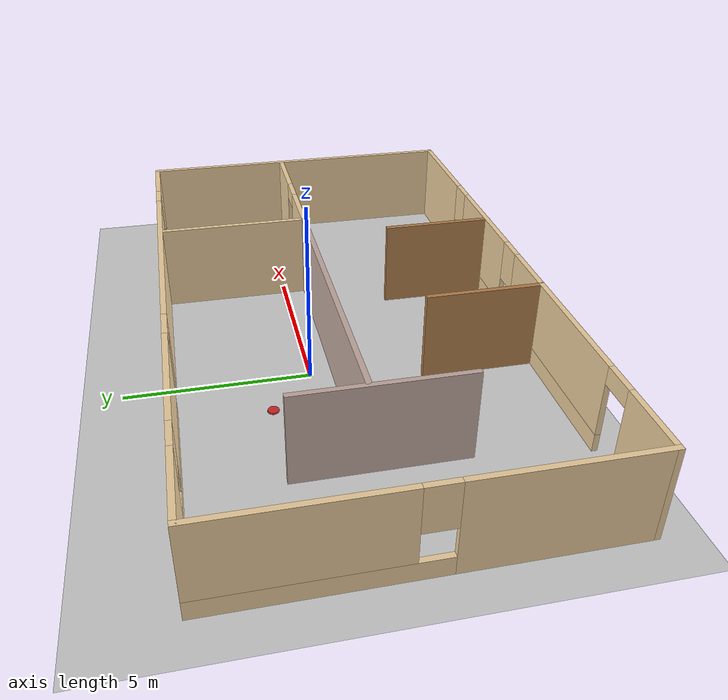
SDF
<sdf version="1.7">
 <world name="default">
  <model name="ground_plane">
   <static>1</static>
   <link name="ground_link">
    <collision name="collision">
     <geometry><plane><normal>0 0 1</normal><size>100 100</size></plane></geometry>
     <surface><friction><ode><mu>100</mu><mu2>50</mu2></ode></friction></surface>
    </collision>
    <visual name="visual">
     <cast_shadows>0</cast_shadows>
     <geometry><plane><normal>0 0 1</normal><size>100 100</size></plane></geometry>
     <material>
      <script><uri>file://media/materials/scripts/gazebo.material</uri><name>Gazebo/Grey</name></script>
     </material>
    </visual>
   </link>
  </model>
  <model name="HomeOffice">
   <pose>1.17907 -1.24904 0 0 -0 0</pose>
   <link name="Wall_0">
    <pose>-8.425 0.002596 0 0 -0 1.5708</pose>
    <visual name="Wall_0_Visual_0">
     <pose>-2.72763 0 1.25 0 -0 0</pose>
     <geometry><box><size>4.54474 0.15 2.5</size></box></geometry>
     <material>
      <script><uri>file://media/materials/scripts/gazebo.material</uri><name>Gazebo/Grey</name></script>
      <ambient>0.921569 0.807843 0.615686 1</ambient>
     </material>
     <meta><layer>0</layer></meta>
    </visual>
    <collision name="Wall_0_Collision_0">
     <geometry><box><size>4.54474 0.15 2.5</size></box></geometry>
     <pose>-2.72763 0 1.25 0 -0 0</pose>
    </collision>
    <visual name="Wall_0_Visual_1">
     <pose>2.27237 0 0.25 0 -0 0</pose>
     <geometry><box><size>5.45526 0.15 0.5</size></box></geometry>
     <material>
      <script><uri>file://media/materials/scripts/gazebo.material</uri><name>Gazebo/Grey</name></script>
      <ambient>0.921569 0.807843 0.615686 1</ambient>
     </material>
     <meta><layer>0</layer></meta>
    </visual>
    <collision name="Wall_0_Collision_1">
     <geometry><box><size>5.45526 0.15 0.5</size></box></geometry>
     <pose>2.27237 0 0.25 0 -0 0</pose>
    </collision>
    <visual name="Wall_0_Visual_2">
     <pose>2.67237 0 1.5 0 -0 0</pose>
     <geometry><box><size>4.65526 0.15 2</size></box></geometry>
     <material>
      <script><uri>file://media/materials/scripts/gazebo.material</uri><name>Gazebo/Grey</name></script>
      <ambient>0.921569 0.807843 0.615686 1</ambient>
     </material>
     <meta><layer>0</layer></meta>
    </visual>
    <collision name="Wall_0_Collision_2">
     <geometry><box><size>4.65526 0.15 2</size></box></geometry>
     <pose>2.67237 0 1.5 0 -0 0</pose>
    </collision>
    <visual name="Wall_0_Visual_3">
     <pose>-0.055255 0 1.9 0 -0 0</pose>
     <geometry><box><size>0.8 0.15 1.2</size></box></geometry>
     <material>
      <script><uri>file://media/materials/scripts/gazebo.material</uri><name>Gazebo/Grey</name></script>
      <ambient>0.921569 0.807843 0.615686 1</ambient>
     </material>
     <meta><layer>0</layer></meta>
    </visual>
    <collision name="Wall_0_Collision_3">
     <geometry><box><size>0.8 0.15 1.2</size></box></geometry>
     <pose>-0.055255 0 1.9 0 -0 0</pose>
    </collision>
   </link>
   <link name="Wall_1">
    <pose>-0 4.9276 0 0 -0 0</pose>
    <visual name="Wall_1_Visual_0">
     <pose>-7.41024 0 1.25 0 -0 0</pose>
     <geometry><box><size>2.17952 0.15 2.5</size></box></geometry>
     <material>
      <script><uri>file://media/materials/scripts/gazebo.material</uri><name>Gazebo/Grey</name></script>
      <ambient>0.921569 0.807843 0.615686 1</ambient>
     </material>
     <meta><layer>0</layer></meta>
    </visual>
    <collision name="Wall_1_Collision_0">
     <geometry><box><size>2.17952 0.15 2.5</size></box></geometry>
     <pose>-7.41024 0 1.25 0 -0 0</pose>
    </collision>
    <visual name="Wall_1_Visual_1">
     <pose>2.26645 0 1.25 0 -0 0</pose>
     <geometry><box><size>7.05766 0.15 2.5</size></box></geometry>
     <material>
      <script><uri>file://media/materials/scripts/gazebo.material</uri><name>Gazebo/Grey</name></script>
      <ambient>0.921569 0.807843 0.615686 1</ambient>
     </material>
     <meta><layer>0</layer></meta>
    </visual>
    <collision name="Wall_1_Collision_1">
     <geometry><box><size>7.05766 0.15 2.5</size></box></geometry>
     <pose>2.26645 0 1.25 0 -0 0</pose>
    </collision>
    <visual name="Wall_1_Visual_2">
     <pose>-4.24143 0 0.25 0 -0 0</pose>
     <geometry><box><size>4.1581 0.15 0.5</size></box></geometry>
     <material>
      <script><uri>file://media/materials/scripts/gazebo.material</uri><name>Gazebo/Grey</name></script>
      <ambient>0.921569 0.807843 0.615686 1</ambient>
     </material>
     <meta><layer>0</layer></meta>
    </visual>
    <collision name="Wall_1_Collision_2">
     <geometry><box><size>4.1581 0.15 0.5</size></box></geometry>
     <pose>-4.24143 0 0.25 0 -0 0</pose>
    </collision>
    <visual name="Wall_1_Visual_3">
     <pose>7.14764 0 0.25 0 -0 0</pose>
     <geometry><box><size>2.70472 0.15 0.5</size></box></geometry>
     <material>
      <script><uri>file://media/materials/scripts/gazebo.material</uri><name>Gazebo/Grey</name></script>
      <ambient>0.921569 0.807843 0.615686 1</ambient>
     </material>
     <meta><layer>0</layer></meta>
    </visual>
    <collision name="Wall_1_Collision_3">
     <geometry><box><size>2.70472 0.15 0.5</size></box></geometry>
     <pose>7.14764 0 0.25 0 -0 0</pose>
    </collision>
    <visual name="Wall_1_Visual_4">
     <pose>-3.84143 0 1.5 0 -0 0</pose>
     <geometry><box><size>3.3581 0.15 2</size></box></geometry>
     <material>
      <script><uri>file://media/materials/scripts/gazebo.material</uri><name>Gazebo/Grey</name></script>
      <ambient>0.921569 0.807843 0.615686 1</ambient>
     </material>
     <meta><layer>0</layer></meta>
    </visual>
    <collision name="Wall_1_Collision_4">
     <geometry><box><size>3.3581 0.15 2</size></box></geometry>
     <pose>-3.84143 0 1.5 0 -0 0</pose>
    </collision>
    <visual name="Wall_1_Visual_5">
     <pose>-3.84143 0 1.5 0 -0 0</pose>
     <geometry><box><size>3.3581 0.15 2</size></box></geometry>
     <material>
      <script><uri>file://media/materials/scripts/gazebo.material</uri><name>Gazebo/Grey</name></script>
      <ambient>0.921569 0.807843 0.615686 1</ambient>
     </material>
     <meta><layer>0</layer></meta>
    </visual>
    <collision name="Wall_1_Collision_5">
     <geometry><box><size>3.3581 0.15 2</size></box></geometry>
     <pose>-3.84143 0 1.5 0 -0 0</pose>
    </collision>
    <visual name="Wall_1_Visual_6">
     <pose>7.54764 0 1.5 0 -0 0</pose>
     <geometry><box><size>1.90472 0.15 2</size></box></geometry>
     <material>
      <script><uri>file://media/materials/scripts/gazebo.material</uri><name>Gazebo/Grey</name></script>
      <ambient>0.921569 0.807843 0.615686 1</ambient>
     </material>
     <meta><layer>0</layer></meta>
    </visual>
    <collision name="Wall_1_Collision_6">
     <geometry><box><size>1.90472 0.15 2</size></box></geometry>
     <pose>7.54764 0 1.5 0 -0 0</pose>
    </collision>
    <visual name="Wall_1_Visual_7">
     <pose>-5.92048 0 1.9 0 -0 0</pose>
     <geometry><box><size>0.8 0.15 1.2</size></box></geometry>
     <material>
      <script><uri>file://media/materials/scripts/gazebo.material</uri><name>Gazebo/Grey</name></script>
      <ambient>0.921569 0.807843 0.615686 1</ambient>
     </material>
     <meta><layer>0</layer></meta>
    </visual>
    <collision name="Wall_1_Collision_7">
     <geometry><box><size>0.8 0.15 1.2</size></box></geometry>
     <pose>-5.92048 0 1.9 0 -0 0</pose>
    </collision>
    <visual name="Wall_1_Visual_8">
     <pose>6.19528 0 1.9 0 -0 0</pose>
     <geometry><box><size>0.8 0.15 1.2</size></box></geometry>
     <material>
      <script><uri>file://media/materials/scripts/gazebo.material</uri><name>Gazebo/Grey</name></script>
      <ambient>0.921569 0.807843 0.615686 1</ambient>
     </material>
     <meta><layer>0</layer></meta>
    </visual>
    <collision name="Wall_1_Collision_8">
     <geometry><box><size>0.8 0.15 1.2</size></box></geometry>
     <pose>6.19528 0 1.9 0 -0 0</pose>
    </collision>
    <visual name="Wall_1_Visual_9">
     <pose>-1.71238 0 2.25 0 -0 0</pose>
     <geometry><box><size>0.9 0.15 0.5</size></box></geometry>
     <material>
      <script><uri>file://media/materials/scripts/gazebo.material</uri><name>Gazebo/Grey</name></script>
      <ambient>0.921569 0.807843 0.615686 1</ambient>
     </material>
     <meta><layer>0</layer></meta>
    </visual>
    <collision name="Wall_1_Collision_9">
     <geometry><box><size>0.9 0.15 0.5</size></box></geometry>
     <pose>-1.71238 0 2.25 0 -0 0</pose>
    </collision>
    <visual name="Wall_1_Visual_10">
     <pose>-1.71238 0 2.25 0 -0 0</pose>
     <geometry><box><size>0.9 0.15 0.5</size></box></geometry>
     <material>
      <script><uri>file://media/materials/scripts/gazebo.material</uri><name>Gazebo/Grey</name></script>
      <ambient>0.921569 0.807843 0.615686 1</ambient>
     </material>
     <meta><layer>0</layer></meta>
    </visual>
    <collision name="Wall_1_Collision_10">
     <geometry><box><size>0.9 0.15 0.5</size></box></geometry>
     <pose>-1.71238 0 2.25 0 -0 0</pose>
    </collision>
   </link>
   <link name="Wall_11">
    <pose>5.95103 0.586614 0 0 -0 0</pose>
    <visual name="Wall_11_Visual_0">
     <pose>-1.50527 0 1.25 0 -0 0</pose>
     <geometry><box><size>1.98945 0.15 2.5</size></box></geometry>
     <material>
      <script><uri>file://media/materials/scripts/gazebo.material</uri><name>Gazebo/Grey</name></script>
      <ambient>0.921569 0.807843 0.615686 1</ambient>
     </material>
     <meta><layer>0</layer></meta>
    </visual>
    <collision name="Wall_11_Collision_0">
     <geometry><box><size>1.98945 0.15 2.5</size></box></geometry>
     <pose>-1.50527 0 1.25 0 -0 0</pose>
    </collision>
    <visual name="Wall_11_Visual_1">
     <pose>1.44473 0 1.25 0 -0 0</pose>
     <geometry><box><size>2.11055 0.15 2.5</size></box></geometry>
     <material>
      <script><uri>file://media/materials/scripts/gazebo.material</uri><name>Gazebo/Grey</name></script>
      <ambient>0.921569 0.807843 0.615686 1</ambient>
     </material>
     <meta><layer>0</layer></meta>
    </visual>
    <collision name="Wall_11_Collision_1">
     <geometry><box><size>2.11055 0.15 2.5</size></box></geometry>
     <pose>1.44473 0 1.25 0 -0 0</pose>
    </collision>
    <visual name="Wall_11_Visual_2">
     <pose>-0.060545 0 2.25 0 -0 0</pose>
     <geometry><box><size>0.9 0.15 0.5</size></box></geometry>
     <material>
      <script><uri>file://media/materials/scripts/gazebo.material</uri><name>Gazebo/Grey</name></script>
      <ambient>0.921569 0.807843 0.615686 1</ambient>
     </material>
     <meta><layer>0</layer></meta>
    </visual>
    <collision name="Wall_11_Collision_2">
     <geometry><box><size>0.9 0.15 0.5</size></box></geometry>
     <pose>-0.060545 0 2.25 0 -0 0</pose>
    </collision>
   </link>
   <link name="Wall_15">
    <collision name="Wall_15_Collision">
     <geometry><box><size>3.25 0.15 2.5</size></box></geometry>
     <pose>0 0 1.25 0 -0 0</pose>
    </collision>
    <visual name="Wall_15_Visual">
     <pose>0 0 1.25 0 -0 0</pose>
     <geometry><box><size>3.25 0.15 2.5</size></box></geometry>
     <material>
      <script><uri>file://media/materials/scripts/gazebo.material</uri><name>Gazebo/Wood</name></script>
      <ambient>1 1 1 1</ambient>
     </material>
     <meta><layer>0</layer></meta>
    </visual>
    <pose>2.3971 -3.3776 0 0 -0 1.5708</pose>
   </link>
   <link name="Wall_17">
    <collision name="Wall_17_Collision">
     <geometry><box><size>3.25 0.15 2.5</size></box></geometry>
     <pose>0 0 1.25 0 -0 0</pose>
    </collision>
    <visual name="Wall_17_Visual">
     <pose>0 0 1.25 0 -0 0</pose>
     <geometry><box><size>3.25 0.15 2.5</size></box></geometry>
     <material>
      <script><uri>file://media/materials/scripts/gazebo.material</uri><name>Gazebo/Wood</name></script>
      <ambient>1 1 1 1</ambient>
     </material>
     <meta><layer>0</layer></meta>
    </visual>
    <pose>-1.77936 -3.35562 0 0 -0 1.5708</pose>
   </link>
   <link name="Wall_2">
    <collision name="Wall_2_Collision">
     <geometry><box><size>10 0.15 2.5</size></box></geometry>
     <pose>0 0 1.25 0 -0 0</pose>
    </collision>
    <visual name="Wall_2_Visual">
     <pose>0 0 1.25 0 -0 0</pose>
     <geometry><box><size>10 0.15 2.5</size></box></geometry>
     <material>
      <script><uri>file://media/materials/scripts/gazebo.material</uri><name>Gazebo/Grey</name></script>
      <ambient>0.921569 0.807843 0.615686 1</ambient>
     </material>
     <meta><layer>0</layer></meta>
    </visual>
    <pose>8.425 0.002596 0 0 -0 -1.5708</pose>
   </link>
   <link name="Wall_3">
    <pose>-0 -4.9224 0 0 -0 3.14159</pose>
    <visual name="Wall_3_Visual_0">
     <pose>-6.76663 0 1.25 0 -0 0</pose>
     <geometry><box><size>3.46674 0.15 2.5</size></box></geometry>
     <material>
      <script><uri>file://media/materials/scripts/gazebo.material</uri><name>Gazebo/Grey</name></script>
      <ambient>0.921569 0.807843 0.615686 1</ambient>
     </material>
     <meta><layer>0</layer></meta>
    </visual>
    <collision name="Wall_3_Collision_0">
     <geometry><box><size>3.46674 0.15 2.5</size></box></geometry>
     <pose>-6.76663 0 1.25 0 -0 0</pose>
    </collision>
    <visual name="Wall_3_Visual_1">
     <pose>7.5069 0 1.25 0 -0 0</pose>
     <geometry><box><size>1.98621 0.15 2.5</size></box></geometry>
     <material>
      <script><uri>file://media/materials/scripts/gazebo.material</uri><name>Gazebo/Grey</name></script>
      <ambient>0.921569 0.807843 0.615686 1</ambient>
     </material>
     <meta><layer>0</layer></meta>
    </visual>
    <collision name="Wall_3_Collision_1">
     <geometry><box><size>1.98621 0.15 2.5</size></box></geometry>
     <pose>7.5069 0 1.25 0 -0 0</pose>
    </collision>
    <visual name="Wall_3_Visual_2">
     <pose>0.290267 0 0.25 0 -0 0</pose>
     <geometry><box><size>10.6471 0.15 0.5</size></box></geometry>
     <material>
      <script><uri>file://media/materials/scripts/gazebo.material</uri><name>Gazebo/Grey</name></script>
      <ambient>0.921569 0.807843 0.615686 1</ambient>
     </material>
     <meta><layer>0</layer></meta>
    </visual>
    <collision name="Wall_3_Collision_2">
     <geometry><box><size>10.6471 0.15 0.5</size></box></geometry>
     <pose>0.290267 0 0.25 0 -0 0</pose>
    </collision>
    <visual name="Wall_3_Visual_3">
     <pose>-2.49467 0 1.5 0 -0 0</pose>
     <geometry><box><size>3.47717 0.15 2</size></box></geometry>
     <material>
      <script><uri>file://media/materials/scripts/gazebo.material</uri><name>Gazebo/Grey</name></script>
      <ambient>0.921569 0.807843 0.615686 1</ambient>
     </material>
     <meta><layer>0</layer></meta>
    </visual>
    <collision name="Wall_3_Collision_3">
     <geometry><box><size>3.47717 0.15 2</size></box></geometry>
     <pose>-2.49467 0 1.5 0 -0 0</pose>
    </collision>
    <visual name="Wall_3_Visual_4">
     <pose>2.82885 0 1.5 0 -0 0</pose>
     <geometry><box><size>5.56988 0.15 2</size></box></geometry>
     <material>
      <script><uri>file://media/materials/scripts/gazebo.material</uri><name>Gazebo/Grey</name></script>
      <ambient>0.921569 0.807843 0.615686 1</ambient>
     </material>
     <meta><layer>0</layer></meta>
    </visual>
    <collision name="Wall_3_Collision_4">
     <geometry><box><size>5.56988 0.15 2</size></box></geometry>
     <pose>2.82885 0 1.5 0 -0 0</pose>
    </collision>
    <visual name="Wall_3_Visual_5">
     <pose>-4.63326 0 1.9 0 -0 0</pose>
     <geometry><box><size>0.8 0.15 1.2</size></box></geometry>
     <material>
      <script><uri>file://media/materials/scripts/gazebo.material</uri><name>Gazebo/Grey</name></script>
      <ambient>0.921569 0.807843 0.615686 1</ambient>
     </material>
     <meta><layer>0</layer></meta>
    </visual>
    <collision name="Wall_3_Collision_5">
     <geometry><box><size>0.8 0.15 1.2</size></box></geometry>
     <pose>-4.63326 0 1.9 0 -0 0</pose>
    </collision>
    <visual name="Wall_3_Visual_6">
     <pose>-0.356089 0 1.9 0 -0 0</pose>
     <geometry><box><size>0.8 0.15 1.2</size></box></geometry>
     <material>
      <script><uri>file://media/materials/scripts/gazebo.material</uri><name>Gazebo/Grey</name></script>
      <ambient>0.921569 0.807843 0.615686 1</ambient>
     </material>
     <meta><layer>0</layer></meta>
    </visual>
    <collision name="Wall_3_Collision_6">
     <geometry><box><size>0.8 0.15 1.2</size></box></geometry>
     <pose>-0.356089 0 1.9 0 -0 0</pose>
    </collision>
    <visual name="Wall_3_Visual_7">
     <pose>6.06379 0 2.25 0 -0 0</pose>
     <geometry><box><size>0.9 0.15 0.5</size></box></geometry>
     <material>
      <script><uri>file://media/materials/scripts/gazebo.material</uri><name>Gazebo/Grey</name></script>
      <ambient>0.921569 0.807843 0.615686 1</ambient>
     </material>
     <meta><layer>0</layer></meta>
    </visual>
    <collision name="Wall_3_Collision_7">
     <geometry><box><size>0.9 0.15 0.5</size></box></geometry>
     <pose>6.06379 0 2.25 0 -0 0</pose>
    </collision>
   </link>
   <link name="Wall_5">
    <collision name="Wall_5_Collision">
     <geometry><box><size>4.5 0.15 2.5</size></box></geometry>
     <pose>0 0 1.25 0 -0 0</pose>
    </collision>
    <visual name="Wall_5_Visual">
     <pose>0 0 1.25 0 -0 0</pose>
     <geometry><box><size>4.5 0.15 2.5</size></box></geometry>
     <material>
      <script><uri>file://media/materials/scripts/gazebo.material</uri><name>Gazebo/Grey</name></script>
      <ambient>0.760784 0.662745 0.627451 1</ambient>
     </material>
     <meta><layer>0</layer></meta>
    </visual>
    <pose>-5.17438 0.236386 0 0 -0 -1.5708</pose>
   </link>
   <link name="Wall_8">
    <collision name="Wall_8_Collision">
     <geometry><box><size>8.75 0.15 2.5</size></box></geometry>
     <pose>0 0 1.25 0 -0 0</pose>
    </collision>
    <visual name="Wall_8_Visual">
     <pose>0 0 1.25 0 -0 0</pose>
     <geometry><box><size>8.75 0.15 2.5</size></box></geometry>
     <material>
      <script><uri>file://media/materials/scripts/gazebo.material</uri><name>Gazebo/Grey</name></script>
      <ambient>0.760784 0.662745 0.627451 1</ambient>
     </material>
     <meta><layer>0</layer></meta>
    </visual>
    <pose>-0.773966 0.586614 0 0 -0 0</pose>
   </link>
   <link name="Wall_9">
    <collision name="Wall_9_Collision">
     <geometry><box><size>4.48714 0.15 2.5</size></box></geometry>
     <pose>0 0 1.25 0 -0 0</pose>
    </collision>
    <visual name="Wall_9_Visual">
     <pose>0 0 1.25 0 -0 0</pose>
     <geometry><box><size>4.48714 0.15 2.5</size></box></geometry>
     <material>
      <script><uri>file://media/materials/scripts/gazebo.material</uri><name>Gazebo/Grey</name></script>
      <ambient>0.921569 0.807843 0.615686 1</ambient>
     </material>
     <meta><layer>0</layer></meta>
    </visual>
    <pose>3.52603 2.75519 0 0 -0 1.5708</pose>
   </link>
   <static>1</static>
  </model>
  <model name="CleanerBot_0">
   <link name="link_0">
    <inertial>
     <mass>1</mass>
     <inertia><ixx>0.145833</ixx><ixy>0</ixy><ixz>0</ixz><iyy>0.145833</iyy><iyz>0</iyz><izz>0.125</izz></inertia>
    </inertial>
    <pose>0 0 0.012 0 -0 0</pose>
    <visual name="visual">
     <geometry><cylinder><radius>0.15</radius><length>0.05</length></cylinder></geometry>
     <material>
      <lighting>1</lighting>
      <script><uri>file://media/materials/scripts/gazebo.material</uri><name>Gazebo/Red</name></script>
      <shader type="pixel"><normal_map>__default__</normal_map></shader>
      <ambient>0.8 0 0 1</ambient>
      <diffuse>0.7 0.7 0.7 1</diffuse>
      <specular>0.01 0.01 0.01 1</specular>
      <emissive>0 0 0 1</emissive>
     </material>
    </visual>
    <collision name="collision">
     <geometry><cylinder><radius>0.15</radius><length>0.05</length></cylinder></geometry>
     <surface>
      <friction>
       <ode><mu>1</mu><mu2>1</mu2><fdir1>0 0 0</fdir1><slip1>0</slip1><slip2>0</slip2></ode>
       <torsional>
        <coefficient>1</coefficient>
        <patch_radius>0</patch_radius>
        <surface_radius>0</surface_radius>
        <use_patch_radius>1</use_patch_radius>
        <ode><slip>0</slip></ode>
       </torsional>
      </friction>
      <bounce><restitution_coefficient>0</restitution_coefficient><threshold>1e+06</threshold></bounce>
      <contact>
       <collide_without_contact>0</collide_without_contact>
       <collide_without_contact_bitmask>1</collide_without_contact_bitmask>
       <collide_bitmask>1</collide_bitmask>
       <ode>
        <soft_cfm>0</soft_cfm>
        <soft_erp>0.2</soft_erp>
        <kp>1e+13</kp>
        <kd>1</kd>
        <max_vel>0.01</max_vel>
        <min_depth>0</min_depth>
       </ode>
       <bullet>
        <split_impulse>1</split_impulse>
        <split_impulse_penetration_threshold>-0.01</split_impulse_penetration_threshold>
        <soft_cfm>0</soft_cfm>
        <soft_erp>0.2</soft_erp>
        <kp>1e+13</kp>
        <kd>1</kd>
       </bullet>
      </contact>
     </surface>
    </collision>
   </link>
   <link name="link_1">
    <inertial>
     <mass>1</mass>
     <inertia><ixx>0.145833</ixx><ixy>0</ixy><ixz>0</ixz><iyy>0.145833</iyy><iyz>0</iyz><izz>0.125</izz></inertia>
    </inertial>
    <pose>0 0.15 0.007 1.5707 -0 0</pose>
    <visual name="visual">
     <geometry><cylinder><radius>0.03</radius><length>0.01</length></cylinder></geometry>
     <material>
      <lighting>1</lighting>
      <script><uri>file://media/materials/scripts/gazebo.material</uri><name>Gazebo/Black</name></script>
      <shader type="pixel"><normal_map>__default__</normal_map></shader>
      <ambient>0 0 0.8 1</ambient>
      <diffuse>0.7 0.7 0.7 1</diffuse>
      <specular>0.01 0.01 0.01 1</specular>
      <emissive>0 0 0 1</emissive>
     </material>
    </visual>
    <collision name="collision">
     <geometry><cylinder><radius>0.03</radius><length>0.01</length></cylinder></geometry>
     <surface>
      <friction>
       <ode><mu>1</mu><mu2>1</mu2><fdir1>0 0 0</fdir1><slip1>0</slip1><slip2>0</slip2></ode>
       <torsional>
        <coefficient>1</coefficient>
        <patch_radius>0</patch_radius>
        <surface_radius>0</surface_radius>
        <use_patch_radius>1</use_patch_radius>
        <ode><slip>0</slip></ode>
       </torsional>
      </friction>
      <bounce><restitution_coefficient>0</restitution_coefficient><threshold>1e+06</threshold></bounce>
      <contact>
       <collide_without_contact>0</collide_without_contact>
       <collide_without_contact_bitmask>1</collide_without_contact_bitmask>
       <collide_bitmask>1</collide_bitmask>
       <ode>
        <soft_cfm>0</soft_cfm>
        <soft_erp>0.2</soft_erp>
        <kp>1e+13</kp>
        <kd>1</kd>
        <max_vel>0.01</max_vel>
        <min_depth>0</min_depth>
       </ode>
       <bullet>
        <split_impulse>1</split_impulse>
        <split_impulse_penetration_threshold>-0.01</split_impulse_penetration_threshold>
        <soft_cfm>0</soft_cfm>
        <soft_erp>0.2</soft_erp>
        <kp>1e+13</kp>
        <kd>1</kd>
       </bullet>
      </contact>
     </surface>
    </collision>
   </link>
   <link name="link_1_clone">
    <inertial>
     <mass>1</mass>
     <inertia><ixx>0.145833</ixx><ixy>0</ixy><ixz>0</ixz><iyy>0.145833</iyy><iyz>0</iyz><izz>0.125</izz></inertia>
    </inertial>
    <pose>0 -0.15 0.007 1.5707 -0 0</pose>
    <visual name="visual">
     <geometry><cylinder><radius>0.03</radius><length>0.01</length></cylinder></geometry>
     <material>
      <lighting>1</lighting>
      <script><uri>file://media/materials/scripts/gazebo.material</uri><name>Gazebo/Black</name></script>
      <shader type="pixel"><normal_map>__default__</normal_map></shader>
      <ambient>0 0 0.8 1</ambient>
      <diffuse>0.7 0.7 0.7 1</diffuse>
      <specular>0.01 0.01 0.01 1</specular>
      <emissive>0 0 0 1</emissive>
     </material>
    </visual>
    <collision name="collision">
     <geometry><cylinder><radius>0.03</radius><length>0.01</length></cylinder></geometry>
     <surface>
      <friction>
       <ode><mu>1</mu><mu2>1</mu2><fdir1>0 0 0</fdir1><slip1>0</slip1><slip2>0</slip2></ode>
       <torsional>
        <coefficient>1</coefficient>
        <patch_radius>0</patch_radius>
        <surface_radius>0</surface_radius>
        <use_patch_radius>1</use_patch_radius>
        <ode><slip>0</slip></ode>
       </torsional>
      </friction>
      <bounce><restitution_coefficient>0</restitution_coefficient><threshold>1e+06</threshold></bounce>
      <contact>
       <collide_without_contact>0</collide_without_contact>
       <collide_without_contact_bitmask>1</collide_without_contact_bitmask>
       <collide_bitmask>1</collide_bitmask>
       <ode>
        <soft_cfm>0</soft_cfm>
        <soft_erp>0.2</soft_erp>
        <kp>1e+13</kp>
        <kd>1</kd>
        <max_vel>0.01</max_vel>
        <min_depth>0</min_depth>
       </ode>
       <bullet>
        <split_impulse>1</split_impulse>
        <split_impulse_penetration_threshold>-0.01</split_impulse_penetration_threshold>
        <soft_cfm>0</soft_cfm>
        <soft_erp>0.2</soft_erp>
        <kp>1e+13</kp>
        <kd>1</kd>
       </bullet>
      </contact>
     </surface>
    </collision>
   </link>
   <link name="link_2">
    <inertial>
     <mass>1</mass>
     <inertia><ixx>0.1</ixx><ixy>0</ixy><ixz>0</ixz><iyy>0.1</iyy><iyz>0</iyz><izz>0.1</izz></inertia>
    </inertial>
    <pose>0.13 0 -0.013 0 -0 0</pose>
    <visual name="visual">
     <geometry><sphere><radius>0.01</radius></sphere></geometry>
     <material>
      <lighting>1</lighting>
      <script><uri>file://media/materials/scripts/gazebo.material</uri><name>Gazebo/Grey</name></script>
      <shader type="pixel"><normal_map>__default__</normal_map></shader>
      <ambient>0.3 0.3 0.3 1</ambient>
      <diffuse>0.7 0.7 0.7 1</diffuse>
      <specular>0.01 0.01 0.01 1</specular>
      <emissive>0 0 0 1</emissive>
     </material>
    </visual>
    <collision name="collision">
     <geometry><sphere><radius>0.01</radius></sphere></geometry>
     <surface>
      <friction>
       <ode><mu>0</mu><mu2>0</mu2><fdir1>0 0 0</fdir1><slip1>0</slip1><slip2>0</slip2></ode>
       <torsional>
        <coefficient>1</coefficient>
        <patch_radius>0</patch_radius>
        <surface_radius>0</surface_radius>
        <use_patch_radius>1</use_patch_radius>
        <ode><slip>0</slip></ode>
       </torsional>
      </friction>
      <bounce><restitution_coefficient>0</restitution_coefficient><threshold>1e+06</threshold></bounce>
      <contact>
       <collide_without_contact>0</collide_without_contact>
       <collide_without_contact_bitmask>1</collide_without_contact_bitmask>
       <collide_bitmask>1</collide_bitmask>
       <ode>
        <soft_cfm>0</soft_cfm>
        <soft_erp>0.2</soft_erp>
        <kp>1e+13</kp>
        <kd>1</kd>
        <max_vel>0.01</max_vel>
        <min_depth>0</min_depth>
       </ode>
       <bullet>
        <split_impulse>1</split_impulse>
        <split_impulse_penetration_threshold>-0.01</split_impulse_penetration_threshold>
        <soft_cfm>0</soft_cfm>
        <soft_erp>0.2</soft_erp>
        <kp>1e+13</kp>
        <kd>1</kd>
       </bullet>
      </contact>
     </surface>
    </collision>
   </link>
   <link name="link_2_clone">
    <inertial>
     <mass>1</mass>
     <inertia><ixx>0.1</ixx><ixy>0</ixy><ixz>0</ixz><iyy>0.1</iyy><iyz>0</iyz><izz>0.1</izz></inertia>
    </inertial>
    <pose>-0.13 0 -0.013 0 -0 0</pose>
    <visual name="visual">
     <geometry><sphere><radius>0.01</radius></sphere></geometry>
     <material>
      <lighting>1</lighting>
      <script><uri>file://media/materials/scripts/gazebo.material</uri><name>Gazebo/Grey</name></script>
      <shader type="pixel"><normal_map>__default__</normal_map></shader>
      <ambient>0.3 0.3 0.3 1</ambient>
      <diffuse>0.7 0.7 0.7 1</diffuse>
      <specular>0.01 0.01 0.01 1</specular>
      <emissive>0 0 0 1</emissive>
     </material>
    </visual>
    <collision name="collision">
     <geometry><sphere><radius>0.01</radius></sphere></geometry>
     <surface>
      <friction>
       <ode><mu>0</mu><mu2>0</mu2><fdir1>0 0 0</fdir1><slip1>0</slip1><slip2>0</slip2></ode>
       <torsional>
        <coefficient>1</coefficient>
        <patch_radius>0</patch_radius>
        <surface_radius>0</surface_radius>
        <use_patch_radius>1</use_patch_radius>
        <ode><slip>0</slip></ode>
       </torsional>
      </friction>
      <bounce><restitution_coefficient>0</restitution_coefficient><threshold>1e+06</threshold></bounce>
      <contact>
       <collide_without_contact>0</collide_without_contact>
       <collide_without_contact_bitmask>1</collide_without_contact_bitmask>
       <collide_bitmask>1</collide_bitmask>
       <ode>
        <soft_cfm>0</soft_cfm>
        <soft_erp>0.2</soft_erp>
        <kp>1e+13</kp>
        <kd>1</kd>
        <max_vel>0.01</max_vel>
        <min_depth>0</min_depth>
       </ode>
       <bullet>
        <split_impulse>1</split_impulse>
        <split_impulse_penetration_threshold>-0.01</split_impulse_penetration_threshold>
        <soft_cfm>0</soft_cfm>
        <soft_erp>0.2</soft_erp>
        <kp>1e+13</kp>
        <kd>1</kd>
       </bullet>
      </contact>
     </surface>
    </collision>
   </link>
   <joint name="link_0_JOINT_1" type="revolute">
    <parent>link_0</parent>
    <child>link_1_clone</child>
    <axis>
     <xyz>0 0 1</xyz>
     <limit>
      <lower>-1.79769e+308</lower>
      <upper>1.79769e+308</upper>
      <effort>-1</effort>
      <velocity>-1</velocity>
     </limit>
     <dynamics>
      <spring_reference>0</spring_reference>
      <spring_stiffness>0</spring_stiffness>
      <damping>0</damping>
     </dynamics>
    </axis>
    <physics>
     <ode><limit><cfm>0</cfm><erp>0.2</erp></limit><suspension><cfm>0</cfm><erp>0.2</erp></suspension></ode>
    </physics>
   </joint>
   <joint name="link_0_JOINT_2" type="revolute">
    <parent>link_0</parent>
    <child>link_1</child>
    <axis>
     <xyz>0 0 1</xyz>
     <limit>
      <lower>-1.79769e+308</lower>
      <upper>1.79769e+308</upper>
      <effort>-1</effort>
      <velocity>-1</velocity>
     </limit>
     <dynamics>
      <spring_reference>0</spring_reference>
      <spring_stiffness>0</spring_stiffness>
      <damping>0</damping>
     </dynamics>
    </axis>
    <physics>
     <ode><limit><cfm>0</cfm><erp>0.2</erp></limit><suspension><cfm>0</cfm><erp>0.2</erp></suspension></ode>
    </physics>
   </joint>
   <joint name="link_0_JOINT_4" type="fixed">
    <parent>link_0</parent>
    <child>link_2</child>
    <physics>
     <ode><limit><cfm>0</cfm><erp>0.2</erp></limit><suspension><cfm>0</cfm><erp>0.2</erp></suspension></ode>
    </physics>
   </joint>
   <joint name="link_0_JOINT_5" type="fixed">
    <parent>link_0</parent>
    <child>link_2_clone</child>
    <physics>
     <ode><limit><cfm>0</cfm><erp>0.2</erp></limit><suspension><cfm>0</cfm><erp>0.2</erp></suspension></ode>
    </physics>
   </joint>
   <static>0</static>
   <pose>-1.35003 1.1974 0.022999 -1e-06 -1.2e-05 -0.003276</pose>
  </model>
 </world>
</sdf>
